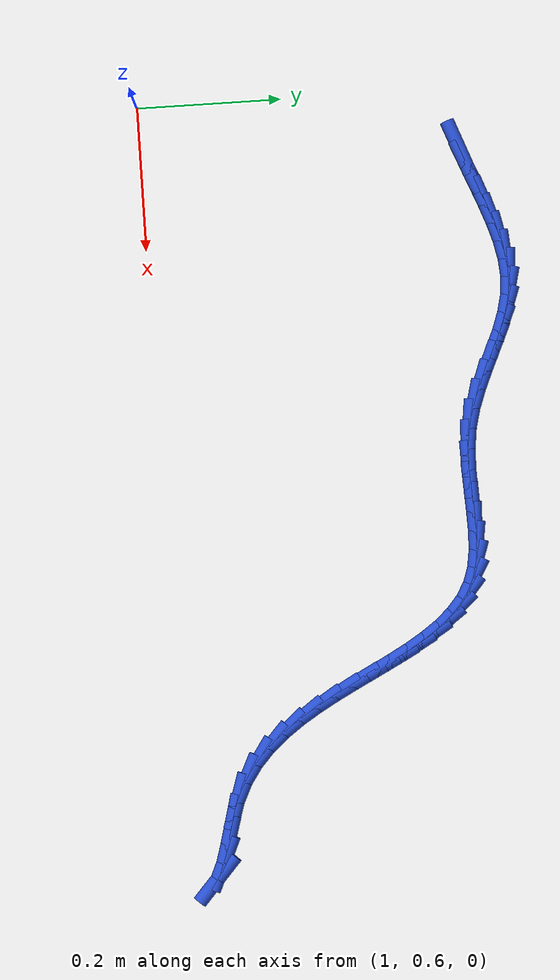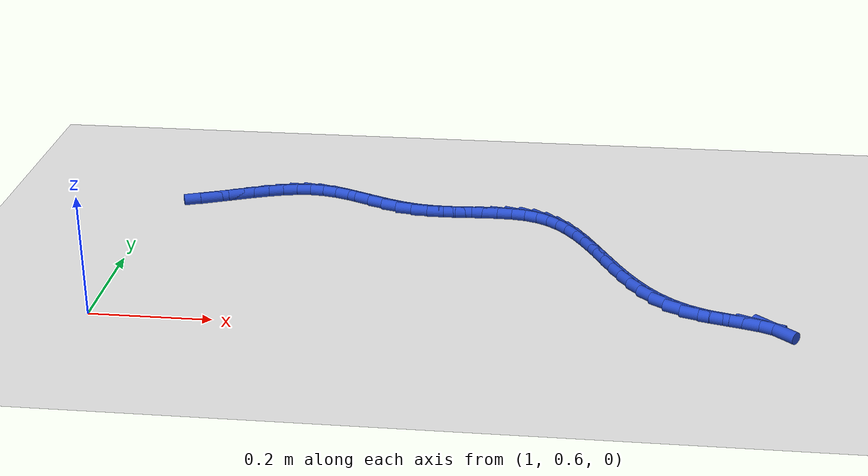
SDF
<sdf version="1.6">
 <world name="default">
  <model name="ground_plane">
   <static>1</static>
   <link name="link">
    <collision name="collision">
     <geometry><plane><normal>0 0 1</normal><size>100 100</size></plane></geometry>
     <surface><friction><ode><mu>100</mu><mu2>50</mu2></ode></friction></surface>
    </collision>
    <visual name="visual">
     <cast_shadows>0</cast_shadows>
     <geometry><plane><normal>0 0 1</normal><size>100 100</size></plane></geometry>
     <material>
      <script><uri>file://media/materials/scripts/gazebo.material</uri><name>Gazebo/WhiteGlow</name></script>
     </material>
    </visual>
   </link>
  </model>
  <model name="line">
   <link name="link_64">
    <pose>1.0851421474589071 1.0424261937460781 0.01 0 1.57 0.35481304464475105</pose>
    <collision name="collision">
     <geometry><cylinder><radius>0.01</radius><length>0.08</length></cylinder></geometry>
    </collision>
    <visual name="visual">
     <material>
      <script><name>Gazebo/Blue</name><uri>file://media/materials/scripts/gazebo.material</uri></script>
     </material>
     <geometry><cylinder><radius>0.01</radius><length>0.08</length></cylinder></geometry>
    </visual>
   </link>
   <link name="link_65">
    <pose>1.1120564678859914 1.052397747589743 0.01 0 1.57 0.37866499751781546</pose>
    <collision name="collision">
     <geometry><cylinder><radius>0.01</radius><length>0.08</length></cylinder></geometry>
    </collision>
    <visual name="visual">
     <material>
      <script><name>Gazebo/Blue</name><uri>file://media/materials/scripts/gazebo.material</uri></script>
     </material>
     <geometry><cylinder><radius>0.01</radius><length>0.08</length></cylinder></geometry>
    </visual>
   </link>
   <link name="link_66">
    <pose>1.138726990205139 1.0630090301378254 0.01 0 1.57 0.37724048293892326</pose>
    <collision name="collision">
     <geometry><cylinder><radius>0.01</radius><length>0.08</length></cylinder></geometry>
    </collision>
    <visual name="visual">
     <material>
      <script><name>Gazebo/Blue</name><uri>file://media/materials/scripts/gazebo.material</uri></script>
     </material>
     <geometry><cylinder><radius>0.01</radius><length>0.08</length></cylinder></geometry>
    </visual>
   </link>
   <link name="link_67">
    <pose>1.165154860039651 1.073480188012624 0.01 0 1.57 0.3497442495089448</pose>
    <collision name="collision">
     <geometry><cylinder><radius>0.01</radius><length>0.08</length></cylinder></geometry>
    </collision>
    <visual name="visual">
     <material>
      <script><name>Gazebo/Blue</name><uri>file://media/materials/scripts/gazebo.material</uri></script>
     </material>
     <geometry><cylinder><radius>0.01</radius><length>0.08</length></cylinder></geometry>
    </visual>
   </link>
   <link name="link_68">
    <pose>1.1913412230128269 1.0830313678364363 0.01 0 1.57 0.2938435220388938</pose>
    <collision name="collision">
     <geometry><cylinder><radius>0.01</radius><length>0.08</length></cylinder></geometry>
    </collision>
    <visual name="visual">
     <material>
      <script><name>Gazebo/Blue</name><uri>file://media/materials/scripts/gazebo.material</uri></script>
     </material>
     <geometry><cylinder><radius>0.01</radius><length>0.08</length></cylinder></geometry>
    </visual>
   </link>
   <link name="link_69">
    <pose>1.2172872247479678 1.0908827162315615 0.01 0 1.57 0.20599492752507853</pose>
    <collision name="collision">
     <geometry><cylinder><radius>0.01</radius><length>0.08</length></cylinder></geometry>
    </collision>
    <visual name="visual">
     <material>
      <script><name>Gazebo/Blue</name><uri>file://media/materials/scripts/gazebo.material</uri></script>
     </material>
     <geometry><cylinder><radius>0.01</radius><length>0.08</length></cylinder></geometry>
    </visual>
   </link>
   <link name="link_70">
    <pose>1.2429940108683744 1.096254379820298 0.01 0 1.57 0.08274085306119316</pose>
    <collision name="collision">
     <geometry><cylinder><radius>0.01</radius><length>0.08</length></cylinder></geometry>
    </collision>
    <visual name="visual">
     <material>
      <script><name>Gazebo/Blue</name><uri>file://media/materials/scripts/gazebo.material</uri></script>
     </material>
     <geometry><cylinder><radius>0.01</radius><length>0.08</length></cylinder></geometry>
    </visual>
   </link>
   <link name="link_71">
    <pose>1.2684627269973467 1.098366505224944 0.01 0 1.57 -0.07560550291243678</pose>
    <collision name="collision">
     <geometry><cylinder><radius>0.01</radius><length>0.08</length></cylinder></geometry>
    </collision>
    <visual name="visual">
     <material>
      <script><name>Gazebo/Blue</name><uri>file://media/materials/scripts/gazebo.material</uri></script>
     </material>
     <geometry><cylinder><radius>0.01</radius><length>0.08</length></cylinder></geometry>
    </visual>
   </link>
   <link name="link_72">
    <pose>1.2936958692449991 1.0964550974352547 0.01 0 1.57 -0.23305854706992238</pose>
    <collision name="collision">
     <geometry><cylinder><radius>0.01</radius><length>0.08</length></cylinder></geometry>
    </collision>
    <visual name="visual">
     <material>
      <script><name>Gazebo/Blue</name><uri>file://media/materials/scripts/gazebo.material</uri></script>
     </material>
     <geometry><cylinder><radius>0.01</radius><length>0.08</length></cylinder></geometry>
    </visual>
   </link>
   <link name="link_73">
    <pose>1.3187597582667343 1.090505634209806 0.01 0 1.57 -0.34291234143875676</pose>
    <collision name="collision">
     <geometry><cylinder><radius>0.01</radius><length>0.08</length></cylinder></geometry>
    </collision>
    <visual name="visual">
     <material>
      <script><name>Gazebo/Blue</name><uri>file://media/materials/scripts/gazebo.material</uri></script>
     </material>
     <geometry><cylinder><radius>0.01</radius><length>0.08</length></cylinder></geometry>
    </visual>
   </link>
   <link name="link_74">
    <pose>1.3438108452557092 1.0815619695695144 0.01 0 1.57 -0.4053407303330899</pose>
    <collision name="collision">
     <geometry><cylinder><radius>0.01</radius><length>0.08</length></cylinder></geometry>
    </collision>
    <visual name="visual">
     <material>
      <script><name>Gazebo/Blue</name><uri>file://media/materials/scripts/gazebo.material</uri></script>
     </material>
     <geometry><cylinder><radius>0.01</radius><length>0.08</length></cylinder></geometry>
    </visual>
   </link>
   <link name="link_75">
    <pose>1.3690123903224523 1.0707479126392834 0.01 0 1.57 -0.42541830560017085</pose>
    <collision name="collision">
     <geometry><cylinder><radius>0.01</radius><length>0.08</length></cylinder></geometry>
    </collision>
    <visual name="visual">
     <material>
      <script><name>Gazebo/Blue</name><uri>file://media/materials/scripts/gazebo.material</uri></script>
     </material>
     <geometry><cylinder><radius>0.01</radius><length>0.08</length></cylinder></geometry>
    </visual>
   </link>
   <link name="link_76">
    <pose>1.3945276535774909 1.0591872725440155 0.01 0 1.57 -0.40631721493932077</pose>
    <collision name="collision">
     <geometry><cylinder><radius>0.01</radius><length>0.08</length></cylinder></geometry>
    </collision>
    <visual name="visual">
     <material>
      <script><name>Gazebo/Blue</name><uri>file://media/materials/scripts/gazebo.material</uri></script>
     </material>
     <geometry><cylinder><radius>0.01</radius><length>0.08</length></cylinder></geometry>
    </visual>
   </link>
   <link name="link_77">
    <pose>1.4205198951313547 1.0480038584086142 0.01 0 1.57 -0.3486993989973237</pose>
    <collision name="collision">
     <geometry><cylinder><radius>0.01</radius><length>0.08</length></cylinder></geometry>
    </collision>
    <visual name="visual">
     <material>
      <script><name>Gazebo/Blue</name><uri>file://media/materials/scripts/gazebo.material</uri></script>
     </material>
     <geometry><cylinder><radius>0.01</radius><length>0.08</length></cylinder></geometry>
    </visual>
   </link>
   <link name="link_78">
    <pose>1.447152375094573 1.038321479357983 0.01 0 1.57 -0.2517777966263909</pose>
    <collision name="collision">
     <geometry><cylinder><radius>0.01</radius><length>0.08</length></cylinder></geometry>
    </collision>
    <visual name="visual">
     <material>
      <script><name>Gazebo/Blue</name><uri>file://media/materials/scripts/gazebo.material</uri></script>
     </material>
     <geometry><cylinder><radius>0.01</radius><length>0.08</length></cylinder></geometry>
    </visual>
   </link>
   <link name="link_79">
    <pose>1.4745883535776731 1.0312639445170246 0.01 0 1.57 -0.12703171204883207</pose>
    <collision name="collision">
     <geometry><cylinder><radius>0.01</radius><length>0.08</length></cylinder></geometry>
    </collision>
    <visual name="visual">
     <material>
      <script><name>Gazebo/Blue</name><uri>file://media/materials/scripts/gazebo.material</uri></script>
     </material>
     <geometry><cylinder><radius>0.01</radius><length>0.08</length></cylinder></geometry>
    </visual>
   </link>
   <link name="link_80">
    <pose>1.502905263973249 1.0276473240801016 0.01 0 1.57 -0.0291010294444684</pose>
    <collision name="collision">
     <geometry><cylinder><radius>0.01</radius><length>0.08</length></cylinder></geometry>
    </collision>
    <visual name="visual">
     <material>
      <script><name>Gazebo/Blue</name><uri>file://media/materials/scripts/gazebo.material</uri></script>
     </material>
     <geometry><cylinder><radius>0.01</radius><length>0.08</length></cylinder></geometry>
    </visual>
   </link>
   <link name="link_81">
    <pose>1.5317676290393791 1.0268071623618564 0.01 0 1.57 0.02856599894414402</pose>
    <collision name="collision">
     <geometry><cylinder><radius>0.01</radius><length>0.08</length></cylinder></geometry>
    </collision>
    <visual name="visual">
     <material>
      <script><name>Gazebo/Blue</name><uri>file://media/materials/scripts/gazebo.material</uri></script>
     </material>
     <geometry><cylinder><radius>0.01</radius><length>0.08</length></cylinder></geometry>
    </visual>
   </link>
   <link name="link_82">
    <pose>1.5607159531090673 1.0276343251616813 0.01 0 1.57 0.048440760838067816</pose>
    <collision name="collision">
     <geometry><cylinder><radius>0.01</radius><length>0.08</length></cylinder></geometry>
    </collision>
    <visual name="visual">
     <material>
      <script><name>Gazebo/Blue</name><uri>file://media/materials/scripts/gazebo.material</uri></script>
     </material>
     <geometry><cylinder><radius>0.01</radius><length>0.08</length></cylinder></geometry>
    </visual>
   </link>
   <link name="link_83">
    <pose>1.5892907164868906 1.029019592123024 0.01 0 1.57 0.030059442088332652</pose>
    <collision name="collision">
     <geometry><cylinder><radius>0.01</radius><length>0.08</length></cylinder></geometry>
    </collision>
    <visual name="visual">
     <material>
      <script><name>Gazebo/Blue</name><uri>file://media/materials/scripts/gazebo.material</uri></script>
     </material>
     <geometry><cylinder><radius>0.01</radius><length>0.08</length></cylinder></geometry>
    </visual>
   </link>
   <link name="link_84">
    <pose>1.6170323994774265 1.029853742889332 0.01 0 1.57 -0.031226686805588197</pose>
    <collision name="collision">
     <geometry><cylinder><radius>0.01</radius><length>0.08</length></cylinder></geometry>
    </collision>
    <visual name="visual">
     <material>
      <script><name>Gazebo/Blue</name><uri>file://media/materials/scripts/gazebo.material</uri></script>
     </material>
     <geometry><cylinder><radius>0.01</radius><length>0.08</length></cylinder></geometry>
    </visual>
   </link>
   <link name="link_85">
    <pose>1.6434814823852517 1.0290275571040521 0.01 0 1.57 -0.1445786580720184</pose>
    <collision name="collision">
     <geometry><cylinder><radius>0.01</radius><length>0.08</length></cylinder></geometry>
    </collision>
    <visual name="visual">
     <material>
      <script><name>Gazebo/Blue</name><uri>file://media/materials/scripts/gazebo.material</uri></script>
     </material>
     <geometry><cylinder><radius>0.01</radius><length>0.08</length></cylinder></geometry>
    </visual>
   </link>
   <link name="link_86">
    <pose>1.6681784455149455 1.025431814410633 0.01 0 1.57 -0.3197570827578688</pose>
    <collision name="collision">
     <geometry><cylinder><radius>0.01</radius><length>0.08</length></cylinder></geometry>
    </collision>
    <visual name="visual">
     <material>
      <script><name>Gazebo/Blue</name><uri>file://media/materials/scripts/gazebo.material</uri></script>
     </material>
     <geometry><cylinder><radius>0.01</radius><length>0.08</length></cylinder></geometry>
    </visual>
   </link>
   <link name="link_87">
    <pose>1.690676089256236 1.0179823983774348 0.01 0 1.57 -0.5231003927801936</pose>
    <collision name="collision">
     <geometry><cylinder><radius>0.01</radius><length>0.08</length></cylinder></geometry>
    </collision>
    <visual name="visual">
     <material>
      <script><name>Gazebo/Blue</name><uri>file://media/materials/scripts/gazebo.material</uri></script>
     </material>
     <geometry><cylinder><radius>0.01</radius><length>0.08</length></cylinder></geometry>
    </visual>
   </link>
   <link name="link_88">
    <pose>1.710886518966464 1.0063273275228588 0.01 0 1.57 -0.7005459771363823</pose>
    <collision name="collision">
     <geometry><cylinder><radius>0.01</radius><length>0.08</length></cylinder></geometry>
    </collision>
    <visual name="visual">
     <material>
      <script><name>Gazebo/Blue</name><uri>file://media/materials/scripts/gazebo.material</uri></script>
     </material>
     <geometry><cylinder><radius>0.01</radius><length>0.08</length></cylinder></geometry>
    </visual>
   </link>
   <link name="link_89">
    <pose>1.7291292072505733 0.9909446890433388 0.01 0 1.57 -0.8413262260866109</pose>
    <collision name="collision">
     <geometry><cylinder><radius>0.01</radius><length>0.08</length></cylinder></geometry>
    </collision>
    <visual name="visual">
     <material>
      <script><name>Gazebo/Blue</name><uri>file://media/materials/scripts/gazebo.material</uri></script>
     </material>
     <geometry><cylinder><radius>0.01</radius><length>0.08</length></cylinder></geometry>
    </visual>
   </link>
   <link name="link_90">
    <pose>1.745745606772837 0.9723573576308594 0.01 0 1.57 -0.9462230775507207</pose>
    <collision name="collision">
     <geometry><cylinder><radius>0.01</radius><length>0.08</length></cylinder></geometry>
    </collision>
    <visual name="visual">
     <material>
      <script><name>Gazebo/Blue</name><uri>file://media/materials/scripts/gazebo.material</uri></script>
     </material>
     <geometry><cylinder><radius>0.01</radius><length>0.08</length></cylinder></geometry>
    </visual>
   </link>
   <link name="link_91">
    <pose>1.7610771701975276 0.9510882079774037 0.01 0 1.57 -1.0200430171079875</pose>
    <collision name="collision">
     <geometry><cylinder><radius>0.01</radius><length>0.08</length></cylinder></geometry>
    </collision>
    <visual name="visual">
     <material>
      <script><name>Gazebo/Blue</name><uri>file://media/materials/scripts/gazebo.material</uri></script>
     </material>
     <geometry><cylinder><radius>0.01</radius><length>0.08</length></cylinder></geometry>
    </visual>
   </link>
   <link name="link_92">
    <pose>1.7754653501889182 0.927660114774957 0.01 0 1.57 -1.0679237073010976</pose>
    <collision name="collision">
     <geometry><cylinder><radius>0.01</radius><length>0.08</length></cylinder></geometry>
    </collision>
    <visual name="visual">
     <material>
      <script><name>Gazebo/Blue</name><uri>file://media/materials/scripts/gazebo.material</uri></script>
     </material>
     <geometry><cylinder><radius>0.01</radius><length>0.08</length></cylinder></geometry>
    </visual>
   </link>
   <link name="link_93">
    <pose>1.7892515994112812 0.9025959527155033 0.01 0 1.57 -1.0938802251871629</pose>
    <collision name="collision">
     <geometry><cylinder><radius>0.01</radius><length>0.08</length></cylinder></geometry>
    </collision>
    <visual name="visual">
     <material>
      <script><name>Gazebo/Blue</name><uri>file://media/materials/scripts/gazebo.material</uri></script>
     </material>
     <geometry><cylinder><radius>0.01</radius><length>0.08</length></cylinder></geometry>
    </visual>
   </link>
   <link name="link_94">
    <pose>1.8027773705288894 0.8764185964910257 0.01 0 1.57 -1.1005089325530106</pose>
    <collision name="collision">
     <geometry><cylinder><radius>0.01</radius><length>0.08</length></cylinder></geometry>
    </collision>
    <visual name="visual">
     <material>
      <script><name>Gazebo/Blue</name><uri>file://media/materials/scripts/gazebo.material</uri></script>
     </material>
     <geometry><cylinder><radius>0.01</radius><length>0.08</length></cylinder></geometry>
    </visual>
   </link>
   <link name="link_95">
    <pose>1.816384116206015 0.8496509207935095 0.01 0 1.57 -1.089082206369195</pose>
    <collision name="collision">
     <geometry><cylinder><radius>0.01</radius><length>0.08</length></cylinder></geometry>
    </collision>
    <visual name="visual">
     <material>
      <script><name>Gazebo/Blue</name><uri>file://media/materials/scripts/gazebo.material</uri></script>
     </material>
     <geometry><cylinder><radius>0.01</radius><length>0.08</length></cylinder></geometry>
    </visual>
   </link>
   <link name="link_96">
    <pose>1.8304132891069316 0.822815800314938 0.01 0 1.57 -1.0597187426316854</pose>
    <collision name="collision">
     <geometry><cylinder><radius>0.01</radius><length>0.08</length></cylinder></geometry>
    </collision>
    <visual name="visual">
     <material>
      <script><name>Gazebo/Blue</name><uri>file://media/materials/scripts/gazebo.material</uri></script>
     </material>
     <geometry><cylinder><radius>0.01</radius><length>0.08</length></cylinder></geometry>
    </visual>
   </link>
   <link name="link_97">
    <pose>1.84520634189591 0.7964361097472953 0.01 0 1.57 -1.011559760084021</pose>
    <collision name="collision">
     <geometry><cylinder><radius>0.01</radius><length>0.08</length></cylinder></geometry>
    </collision>
    <visual name="visual">
     <material>
      <script><name>Gazebo/Blue</name><uri>file://media/materials/scripts/gazebo.material</uri></script>
     </material>
     <geometry><cylinder><radius>0.01</radius><length>0.08</length></cylinder></geometry>
    </visual>
   </link>
   <link name="link_98">
    <pose>1.8611047272372248 0.7710347237825659 0.01 0 1.57 -0.9430077917573585</pose>
    <collision name="collision">
     <geometry><cylinder><radius>0.01</radius><length>0.08</length></cylinder></geometry>
    </collision>
    <visual name="visual">
     <material>
      <script><name>Gazebo/Blue</name><uri>file://media/materials/scripts/gazebo.material</uri></script>
     </material>
     <geometry><cylinder><radius>0.01</radius><length>0.08</length></cylinder></geometry>
    </visual>
   </link>
   <link name="link_99">
    <pose>1.8784498977951483 0.7471345171127335 0.01 0 1.57 -0.8521793154982317</pose>
    <collision name="collision">
     <geometry><cylinder><radius>0.01</radius><length>0.08</length></cylinder></geometry>
    </collision>
    <visual name="visual">
     <material>
      <script><name>Gazebo/Blue</name><uri>file://media/materials/scripts/gazebo.material</uri></script>
     </material>
     <geometry><cylinder><radius>0.01</radius><length>0.08</length></cylinder></geometry>
    </visual>
   </link>
   <link name="link_100">
    <pose>1.897583306233952 0.7252583644297826 0.01 0 1.57 -0.737792761198436</pose>
    <collision name="collision">
     <geometry><cylinder><radius>0.01</radius><length>0.08</length></cylinder></geometry>
    </collision>
    <visual name="visual">
     <material>
      <script><name>Gazebo/Blue</name><uri>file://media/materials/scripts/gazebo.material</uri></script>
     </material>
     <geometry><cylinder><radius>0.01</radius><length>0.08</length></cylinder></geometry>
    </visual>
   </link>
   <link name="link_101">
    <pose>1.9188464052179102 0.7059291404256971 0.01 0 1.57 -0.600629754553122</pose>
    <collision name="collision">
     <geometry><cylinder><radius>0.01</radius><length>0.08</length></cylinder></geometry>
    </collision>
    <visual name="visual">
     <material>
      <script><name>Gazebo/Blue</name><uri>file://media/materials/scripts/gazebo.material</uri></script>
     </material>
     <geometry><cylinder><radius>0.01</radius><length>0.08</length></cylinder></geometry>
    </visual>
   </link>
   <link name="link_102">
    <pose>1.9425806474112948 0.6896697197924611 0.01 0 1.57 -0.4456749582775985</pose>
    <collision name="collision">
     <geometry><cylinder><radius>0.01</radius><length>0.08</length></cylinder></geometry>
    </collision>
    <visual name="visual">
     <material>
      <script><name>Gazebo/Blue</name><uri>file://media/materials/scripts/gazebo.material</uri></script>
     </material>
     <geometry><cylinder><radius>0.01</radius><length>0.08</length></cylinder></geometry>
    </visual>
   </link>
   <link name="link_103">
    <pose>1.969115606293674 0.6769931235405952 0.01 0 1.57 -0.31521689211147025</pose>
    <collision name="collision">
     <geometry><cylinder><radius>0.01</radius><length>0.08</length></cylinder></geometry>
    </collision>
    <visual name="visual">
     <material>
      <script><name>Gazebo/Blue</name><uri>file://media/materials/scripts/gazebo.material</uri></script>
     </material>
     <geometry><cylinder><radius>0.01</radius><length>0.08</length></cylinder></geometry>
    </visual>
   </link>
   <link name="link_104">
    <pose>1.9978352080181685 0.6676279663628573 0.01 0 1.57 -0.26131859542149233</pose>
    <collision name="collision">
     <geometry><cylinder><radius>0.01</radius><length>0.08</length></cylinder></geometry>
    </collision>
    <visual name="visual">
     <material>
      <script><name>Gazebo/Blue</name><uri>file://media/materials/scripts/gazebo.material</uri></script>
     </material>
     <geometry><cylinder><radius>0.01</radius><length>0.08</length></cylinder></geometry>
    </visual>
   </link>
   <link name="link_105">
    <pose>2.026505236126469 0.6599606275837588 0.01 0 1.57 -0.2860782197115047</pose>
    <collision name="collision">
     <geometry><cylinder><radius>0.01</radius><length>0.08</length></cylinder></geometry>
    </collision>
    <visual name="visual">
     <material>
      <script><name>Gazebo/Blue</name><uri>file://media/materials/scripts/gazebo.material</uri></script>
     </material>
     <geometry><cylinder><radius>0.01</radius><length>0.08</length></cylinder></geometry>
    </visual>
   </link>
   <link name="link_106">
    <pose>2.0527328066298307 0.6522458731770251 0.01 0 1.57 -0.41821444453352047</pose>
    <collision name="collision">
     <geometry><cylinder><radius>0.01</radius><length>0.08</length></cylinder></geometry>
    </collision>
    <visual name="visual">
     <material>
      <script><name>Gazebo/Blue</name><uri>file://media/materials/scripts/gazebo.material</uri></script>
     </material>
     <geometry><cylinder><radius>0.01</radius><length>0.08</length></cylinder></geometry>
    </visual>
   </link>
   <link name="link_107">
    <pose>2.074125035539512 0.6427384691163822 0.01 0 1.57 -0.7299779105201992</pose>
    <collision name="collision">
     <geometry><cylinder><radius>0.01</radius><length>0.08</length></cylinder></geometry>
    </collision>
    <visual name="visual">
     <material>
      <script><name>Gazebo/Blue</name><uri>file://media/materials/scripts/gazebo.material</uri></script>
     </material>
     <geometry><cylinder><radius>0.01</radius><length>0.08</length></cylinder></geometry>
    </visual>
   </link>
  </model>
 </world>
</sdf>
